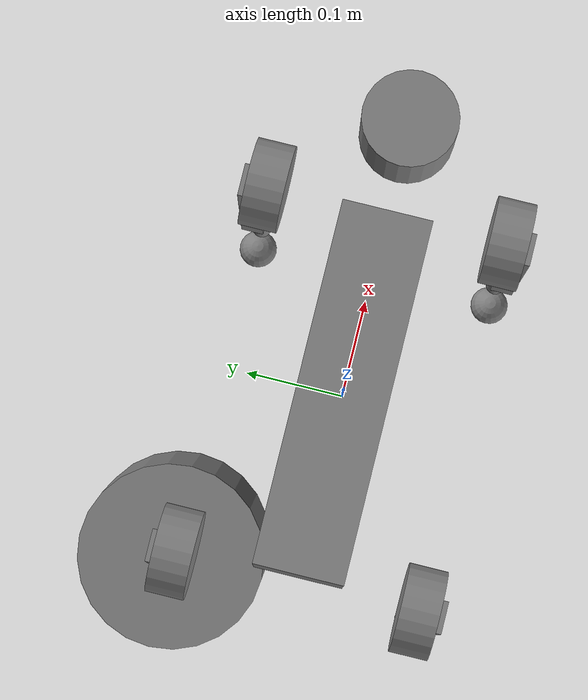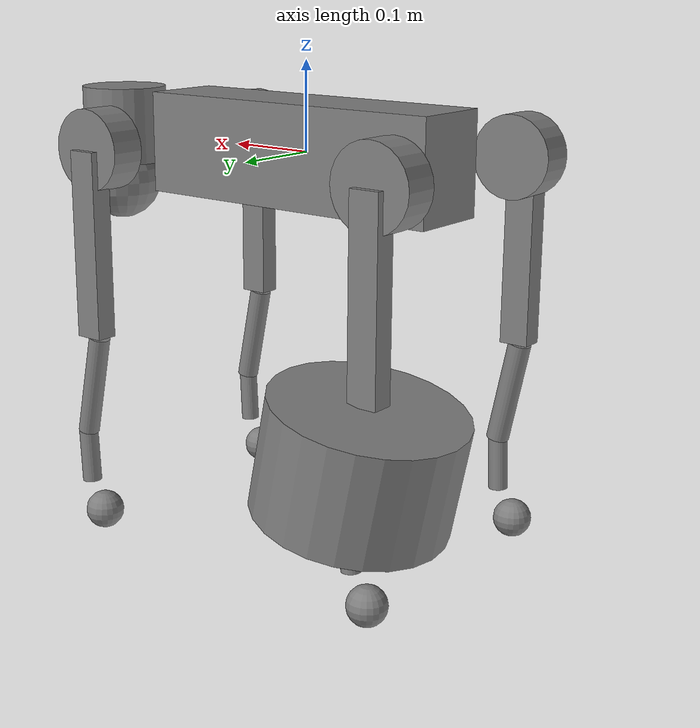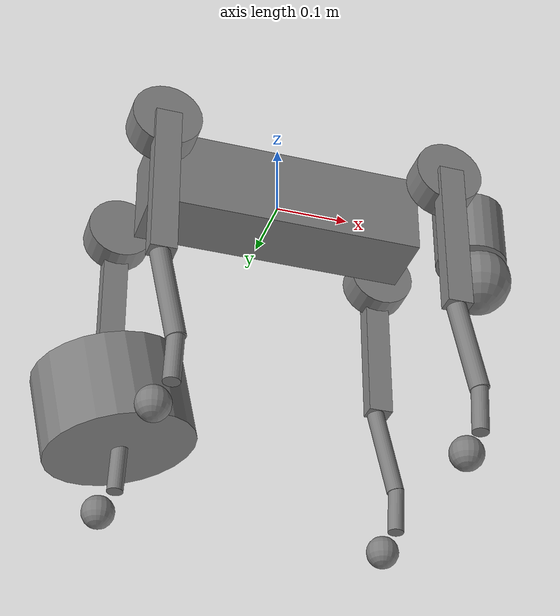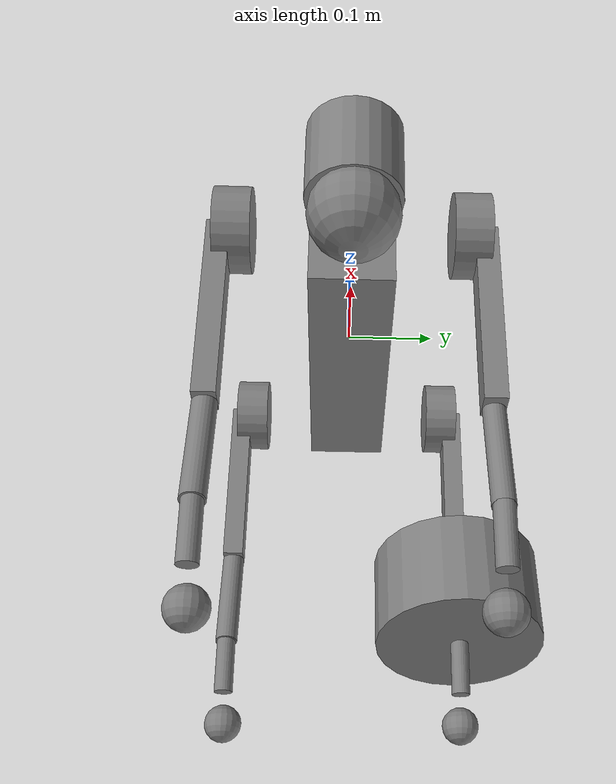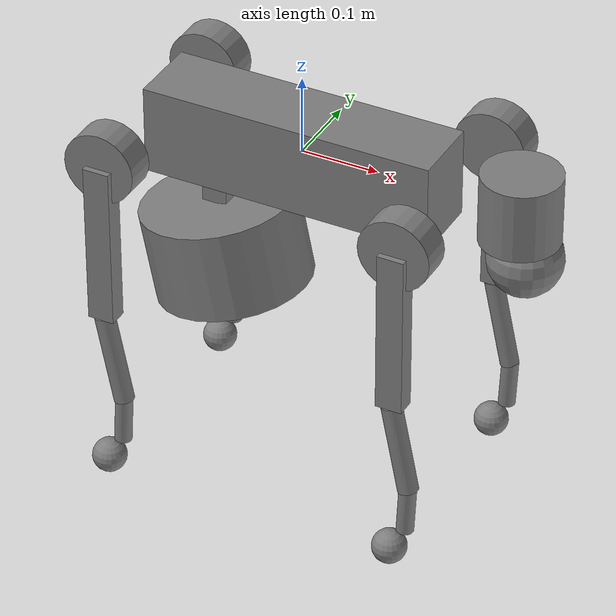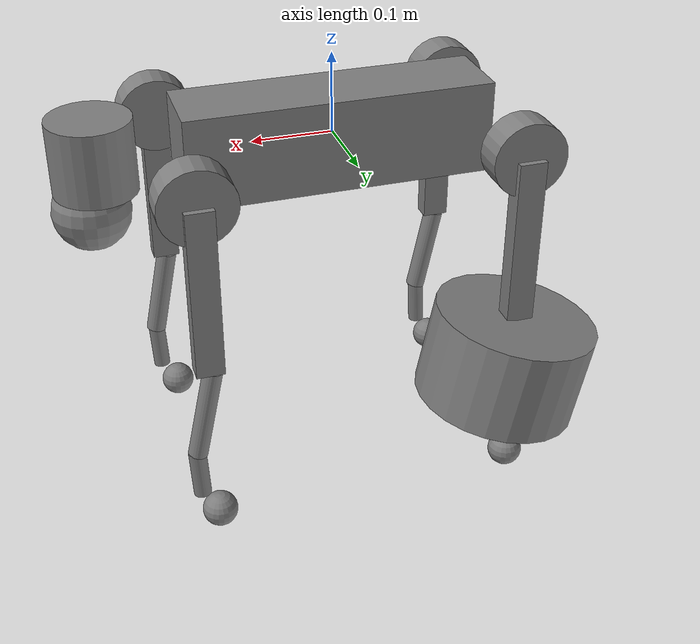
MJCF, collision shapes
<mujoco model="go2">
  <compiler angle="radian" autolimits="true"/>

  <option gravity="0 0 0" cone="elliptic" impratio="100"/>

  <visual>
    <global ellipsoidinertia="true"/>
  </visual>

  <default>
    <default class="go2">
      <geom friction="0.6" margin="0.001" condim="1"/>
      <joint axis="0 1 0" damping="2" armature="0.01" frictionloss="0.2"/>
      <motor ctrlrange="-23.7 23.7"/>
    </default>
    <default class="abduction">
      <joint axis="1 0 0" range="-1.0472 1.0472"/>
    </default>
    <default class="hip">
    </default>
    <default class="front_hip">
      <joint axis="0 1 0" range="-1.5708 3.4907"/>
    </default>
    <default class="back_hip">
      <joint axis="0 1 0" range="-0.5236 4.5379"/>
    </default>
    <default class="knee">
      <joint axis="0 1 0" range="-2.7227 -0.83776"/>
      <motor ctrlrange="-45.43 45.43"/>
    </default>
    <default class="go2_visual">
      <geom type="mesh" contype="0" conaffinity="0" group="1"/>
    </default>
    <default class="go2_collision">
      <geom group="0"/>
    </default>
    <default class="foot">
      <geom size="0.022" pos="-0.002 0 -0.213" priority="1" solimp="0.015 1 0.022" condim="6"
        friction="2 0.02 0.01"/>
    </default>
  </default>

  <asset>
    <material name="metal" rgba=".9 .95 .95 1"/>
    <material name="black" rgba="0 0 0 1"/>
    <material name="white" rgba="1 1 1 1"/>
    <material name="gray" rgba="0.671705 0.692426 0.774270 1"/>

    <mesh name="base_0" file="/Users/sb/Downloads/workspace/dev_robosuite/robosuite/models/assets/robots/go2/meshes/base_0.obj"/>
    <mesh name="base_1" file="/Users/sb/Downloads/workspace/dev_robosuite/robosuite/models/assets/robots/go2/meshes/base_1.obj"/>
    <mesh name="base_2" file="/Users/sb/Downloads/workspace/dev_robosuite/robosuite/models/assets/robots/go2/meshes/base_2.obj"/>
    <mesh name="base_3" file="/Users/sb/Downloads/workspace/dev_robosuite/robosuite/models/assets/robots/go2/meshes/base_3.obj"/>
    <mesh name="base_4" file="/Users/sb/Downloads/workspace/dev_robosuite/robosuite/models/assets/robots/go2/meshes/base_4.obj"/>
    <mesh name="hip_0" file="/Users/sb/Downloads/workspace/dev_robosuite/robosuite/models/assets/robots/go2/meshes/hip_0.obj"/>
    <mesh name="hip_1" file="/Users/sb/Downloads/workspace/dev_robosuite/robosuite/models/assets/robots/go2/meshes/hip_1.obj"/>
    <mesh name="thigh_0" file="/Users/sb/Downloads/workspace/dev_robosuite/robosuite/models/assets/robots/go2/meshes/thigh_0.obj"/>
    <mesh name="thigh_1" file="/Users/sb/Downloads/workspace/dev_robosuite/robosuite/models/assets/robots/go2/meshes/thigh_1.obj"/>
    <mesh name="thigh_mirror_0" file="/Users/sb/Downloads/workspace/dev_robosuite/robosuite/models/assets/robots/go2/meshes/thigh_mirror_0.obj"/>
    <mesh name="thigh_mirror_1" file="/Users/sb/Downloads/workspace/dev_robosuite/robosuite/models/assets/robots/go2/meshes/thigh_mirror_1.obj"/>
    <mesh name="calf_0" file="/Users/sb/Downloads/workspace/dev_robosuite/robosuite/models/assets/robots/go2/meshes/calf_0.obj"/>
    <mesh name="calf_1" file="/Users/sb/Downloads/workspace/dev_robosuite/robosuite/models/assets/robots/go2/meshes/calf_1.obj"/>
    <mesh name="calf_mirror_0" file="/Users/sb/Downloads/workspace/dev_robosuite/robosuite/models/assets/robots/go2/meshes/calf_mirror_0.obj"/>
    <mesh name="calf_mirror_1" file="/Users/sb/Downloads/workspace/dev_robosuite/robosuite/models/assets/robots/go2/meshes/calf_mirror_1.obj"/>
    <mesh name="foot" file="/Users/sb/Downloads/workspace/dev_robosuite/robosuite/models/assets/robots/go2/meshes/foot.obj"/>
  </asset>

  <worldbody>
    <body name="base" pos="0 0 0">
      <freejoint/>
      <inertial pos="0.021112 0 -0.005366" quat="-0.000543471 0.713435 -0.00173769 0.700719" mass="6.921"
        diaginertia="0.107027 0.0980771 0.0244531"/>
      <geom mesh="base_0" material="black" class="go2_visual"/>
      <geom mesh="base_1" material="black" class="go2_visual"/>
      <geom mesh="base_2" material="black" class="go2_visual"/>
      <geom mesh="base_3" material="white" class="go2_visual"/>
      <geom mesh="base_4" material="gray" class="go2_visual"/>
      <geom size="0.1881 0.04675 0.057" type="box" class="go2_collision"/>
      <geom size="0.05 0.045" pos="0.285 0 0.01" type="cylinder" class="go2_collision"/>
      <geom size="0.047" pos="0.293 0 -0.06" class="go2_collision"/>
      <site name="imu" pos="-0.02557 0 0.04232"/>
      <body name="FL_hip" pos="0.1934 0.0465 0">
        <inertial pos="-0.0054 0.00194 -0.000105" quat="0.497014 0.499245 0.505462 0.498237" mass="0.678"
          diaginertia="0.00088403 0.000596003 0.000479967"/>
        <joint name="FL_hip_joint" class="abduction"/>
        <geom mesh="hip_0" material="metal" class="go2_visual"/>
        <geom mesh="hip_1" material="gray" class="go2_visual"/>
        <geom size="0.046 0.02" pos="0 0.08 0" quat="1 1 0 0" type="cylinder" class="go2_collision"/>
        <body name="FL_thigh" pos="0 0.0955 0">
          <inertial pos="-0.00374 -0.0223 -0.0327" quat="0.829533 0.0847635 -0.0200632 0.551623" mass="1.152"
            diaginertia="0.00594973 0.00584149 0.000878787"/>
          <joint name="FL_thigh_joint" class="front_hip"/>
          <geom mesh="thigh_0" material="metal" class="go2_visual"/>
          <geom mesh="thigh_1" material="gray" class="go2_visual"/>
          <geom size="0.1065 0.01225 0.017" pos="0 0 -0.1065" quat="0.707107 0 0.707107 0" type="box" class="go2_collision"/>
          <body name="FL_calf" pos="0 0 -0.213">
            <inertial pos="0.00629595 -0.000622121 -0.141417" quat="0.710672 0.00154099 -0.00450087 0.703508"
              mass="0.241352" diaginertia="0.0014901 0.00146356 5.31397e-05"/>
            <joint name="FL_calf_joint" class="knee"/>
            <geom mesh="calf_0" material="gray" class="go2_visual"/>
            <geom mesh="calf_1" material="black" class="go2_visual"/>
            <geom size="0.012 0.06" pos="0.008 0 -0.06" quat="0.994493 0 -0.104807 0" type="cylinder" class="go2_collision"/>
            <geom size="0.011 0.0325" pos="0.02 0 -0.148" quat="0.999688 0 0.0249974 0" type="cylinder" class="go2_collision"/>
            <geom pos="0 0 -0.213" mesh="foot" class="go2_visual" material="black"/>
            <geom name="FL" class="foot"/>
            <site name="FL_foot_site" pos="0 0 -0.213" size="0.01" group="1"/>
          </body>
        </body>
      </body>
      <body name="FR_hip" pos="0.1934 -0.0465 0">
        <inertial pos="-0.0054 -0.00194 -0.000105" quat="0.498237 0.505462 0.499245 0.497014" mass="0.678"
          diaginertia="0.00088403 0.000596003 0.000479967"/>
        <joint name="FR_hip_joint" class="abduction"/>
        <geom mesh="hip_0" material="metal" class="go2_visual" quat="4.63268e-05 1 0 0"/>
        <geom mesh="hip_1" material="gray" class="go2_visual" quat="4.63268e-05 1 0 0"/>
        <geom size="0.046 0.02" pos="0 -0.08 0" quat="0.707107 0.707107 0 0" type="cylinder" class="go2_collision"/>
        <body name="FR_thigh" pos="0 -0.0955 0">
          <inertial pos="-0.00374 0.0223 -0.0327" quat="0.551623 -0.0200632 0.0847635 0.829533" mass="1.152"
            diaginertia="0.00594973 0.00584149 0.000878787"/>
          <joint name="FR_thigh_joint" class="front_hip"/>
          <geom mesh="thigh_mirror_0" material="metal" class="go2_visual"/>
          <geom mesh="thigh_mirror_1" material="gray" class="go2_visual"/>
          <geom size="0.1065 0.01225 0.017" pos="0 0 -0.1065" quat="0.707107 0 0.707107 0" type="box" class="go2_collision"/>
          <body name="FR_calf" pos="0 0 -0.213">
            <inertial pos="0.00629595 0.000622121 -0.141417" quat="0.703508 -0.00450087 0.00154099 0.710672"
              mass="0.241352" diaginertia="0.0014901 0.00146356 5.31397e-05"/>
            <joint name="FR_calf_joint" class="knee"/>
            <geom mesh="calf_mirror_0" material="gray" class="go2_visual"/>
            <geom mesh="calf_mirror_1" material="black" class="go2_visual"/>
            <geom size="0.013 0.06" pos="0.01 0 -0.06" quat="0.995004 0 -0.0998334 0" type="cylinder" class="go2_collision"/>
            <geom size="0.011 0.0325" pos="0.02 0 -0.148" quat="0.999688 0 0.0249974 0" type="cylinder" class="go2_collision"/>
            <geom pos="0 0 -0.213" mesh="foot" class="go2_visual" material="black"/>
            <geom name="FR" class="foot"/>
            <site name="FR_foot_site" pos="0 0 -0.213" size="0.01" group="1"/>
          </body>
        </body>
      </body>
      <body name="RL_hip" pos="-0.1934 0.0465 0">
        <inertial pos="0.0054 0.00194 -0.000105" quat="0.505462 0.498237 0.497014 0.499245" mass="0.678"
          diaginertia="0.00088403 0.000596003 0.000479967"/>
        <joint name="RL_hip_joint" class="abduction"/>
        <geom mesh="hip_0" material="metal" class="go2_visual" quat="4.63268e-05 0 1 0"/>
        <geom mesh="hip_1" material="gray" class="go2_visual" quat="4.63268e-05 0 1 0"/>
        <geom size="0.046 0.02" pos="0 0.08 0" quat="0.707107 0.707107 0 0" type="cylinder" class="go2_collision"/>
        <body name="RL_thigh" pos="0 0.0955 0">
          <inertial pos="-0.00374 -0.0223 -0.0327" quat="0.829533 0.0847635 -0.0200632 0.551623" mass="1.152"
            diaginertia="0.00594973 0.00584149 0.000878787"/>
          <joint name="RL_thigh_joint" class="back_hip"/>
          <geom mesh="thigh_0" material="metal" class="go2_visual"/>
          <geom mesh="thigh_1" material="gray" class="go2_visual"/>
          <geom size="0.1065 0.01225 0.017" pos="0 0 -0.1065" quat="0.707107 0 0.707107 0" type="box" class="go2_collision"/>
          <body name="RL_calf" pos="0 0 -0.213">
            <inertial pos="0.00629595 -0.000622121 -0.141417" quat="0.710672 0.00154099 -0.00450087 0.703508"
              mass="0.241352" diaginertia="0.0014901 0.00146356 5.31397e-05"/>
            <joint name="RL_calf_joint" class="knee"/>
            <geom mesh="calf_0" material="gray" class="go2_visual"/>
            <geom mesh="calf_1" material="black" class="go2_visual"/>
            <geom size="0.103 0.06" pos="0.01 0 -0.06" quat="0.995004 0 -0.0998334 0" type="cylinder" class="go2_collision"/>
            <geom size="0.011 0.0325" pos="0.02 0 -0.148" quat="0.999688 0 0.0249974 0" type="cylinder" class="go2_collision"/>
            <geom pos="0 0 -0.213" mesh="foot" class="go2_visual" material="black"/>
            <geom name="RL" class="foot"/>
            <site name="RL_foot_site" pos="0 0 -0.213" size="0.01" group="1"/>
          </body>
        </body>
      </body>
      <body name="RR_hip" pos="-0.1934 -0.0465 0">
        <inertial pos="0.0054 -0.00194 -0.000105" quat="0.499245 0.497014 0.498237 0.505462" mass="0.678"
          diaginertia="0.00088403 0.000596003 0.000479967"/>
        <joint name="RR_hip_joint" class="abduction"/>
        <geom mesh="hip_0" material="metal" class="go2_visual" quat="2.14617e-09 4.63268e-05 4.63268e-05 -1"/>
        <geom mesh="hip_1" material="gray" class="go2_visual" quat="2.14617e-09 4.63268e-05 4.63268e-05 -1"/>
        <geom size="0.046 0.02" pos="0 -0.08 0" quat="0.707107 0.707107 0 0" type="cylinder" class="go2_collision"/>
        <body name="RR_thigh" pos="0 -0.0955 0">
          <inertial pos="-0.00374 0.0223 -0.0327" quat="0.551623 -0.0200632 0.0847635 0.829533" mass="1.152"
            diaginertia="0.00594973 0.00584149 0.000878787"/>
          <joint name="RR_thigh_joint" class="back_hip"/>
          <geom mesh="thigh_mirror_0" material="metal" class="go2_visual"/>
          <geom mesh="thigh_mirror_1" material="gray" class="go2_visual"/>
          <geom size="0.1065 0.01225 0.017" pos="0 0 -0.1065" quat="0.707107 0 0.707107 0" type="box" class="go2_collision"/>
          <body name="RR_calf" pos="0 0 -0.213">
            <inertial pos="0.00629595 0.000622121 -0.141417" quat="0.703508 -0.00450087 0.00154099 0.710672"
              mass="0.241352" diaginertia="0.0014901 0.00146356 5.31397e-05"/>
            <joint name="RR_calf_joint" class="knee"/>
            <geom mesh="calf_mirror_0" material="gray" class="go2_visual"/>
            <geom mesh="calf_mirror_1" material="black" class="go2_visual"/>
            <geom size="0.013 0.06" pos="0.01 0 -0.06" quat="0.995004 0 -0.0998334 0" type="cylinder" class="go2_collision"/>
            <geom size="0.011 0.0325" pos="0.02 0 -0.148" quat="0.999688 0 0.0249974 0" type="cylinder" class="go2_collision"/>
            <geom pos="0 0 -0.213" mesh="foot" class="go2_visual" material="black"/>
            <geom name="RR" class="foot"/>
            <site name="RR_foot_site" pos="0 0 -0.213" size="0.01" group="1"/>
          </body>
        </body>
      </body>
    </body>
  </worldbody>

  <actuator>
    <motor class="abduction" name="FL_hip" joint="FL_hip_joint"/>
    <motor class="hip" name="FL_thigh" joint="FL_thigh_joint"/>
    <motor class="knee" name="FL_calf" joint="FL_calf_joint"/>
    <motor class="abduction" name="FR_hip" joint="FR_hip_joint"/>
    <motor class="hip" name="FR_thigh" joint="FR_thigh_joint"/>
    <motor class="knee" name="FR_calf" joint="FR_calf_joint"/>
    <motor class="abduction" name="RL_hip" joint="RL_hip_joint"/>
    <motor class="hip" name="RL_thigh" joint="RL_thigh_joint"/>
    <motor class="knee" name="RL_calf" joint="RL_calf_joint"/>
    <motor class="abduction" name="RR_hip" joint="RR_hip_joint"/>
    <motor class="hip" name="RR_thigh" joint="RR_thigh_joint"/>
    <motor class="knee" name="RR_calf" joint="RR_calf_joint"/>
  </actuator>
</mujoco>
